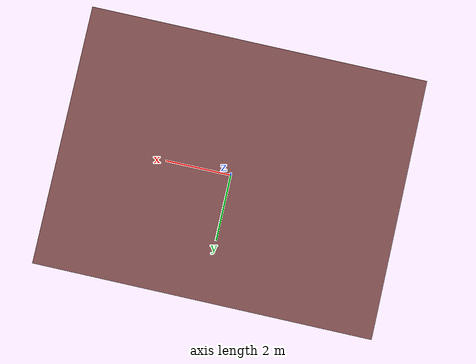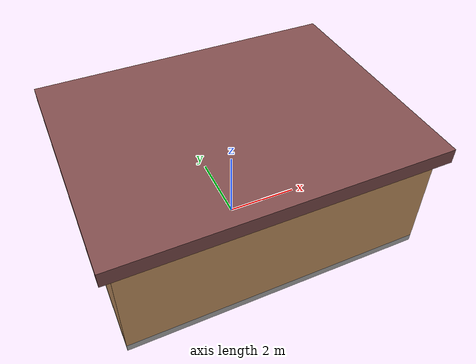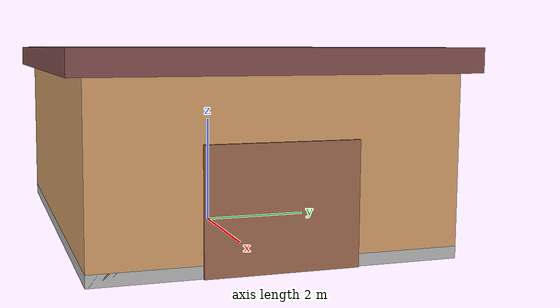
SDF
<?xml version="1.0" ?>
<sdf version="1.8">
  <model name="storage_building">
    <static>true</static>

    <!-- Building foundation -->
    <link name="foundation">
      <pose>0 0 0.1 0 0 0</pose>
      <collision name="foundation_collision">
        <geometry>
          <box>
            <size>8 6 0.2</size>
          </box>
        </geometry>
      </collision>
      <visual name="foundation_visual">
        <geometry>
          <box>
            <size>8 6 0.2</size>
          </box>
        </geometry>
        <material>
          <ambient>0.5 0.5 0.5 1</ambient>
          <diffuse>0.7 0.7 0.7 1</diffuse>
          <specular>0.1 0.1 0.1 1</specular>
        </material>
      </visual>
    </link>

    <!-- Main walls -->
    <link name="walls">
      <pose>0 0 1.5 0 0 0</pose>
      <collision name="walls_collision">
        <geometry>
          <box>
            <size>8 6 3</size>
          </box>
        </geometry>
      </collision>
      <visual name="walls_visual">
        <geometry>
          <box>
            <size>8 6 3</size>
          </box>
        </geometry>
        <material>
          <ambient>0.6 0.4 0.3 1</ambient>
          <diffuse>0.8 0.6 0.4 1</diffuse>
          <specular>0.1 0.1 0.1 1</specular>
        </material>
      </visual>
    </link>

    <!-- Roof -->
    <link name="roof">
      <pose>0 0 3.2 0 0 0</pose>
      <collision name="roof_collision">
        <geometry>
          <box>
            <size>8.5 6.5 0.4</size>
          </box>
        </geometry>
      </collision>
      <visual name="roof_visual">
        <geometry>
          <box>
            <size>8.5 6.5 0.4</size>
          </box>
        </geometry>
        <material>
          <ambient>0.3 0.2 0.2 1</ambient>
          <diffuse>0.5 0.3 0.3 1</diffuse>
          <specular>0.2 0.2 0.2 1</specular>
        </material>
      </visual>
    </link>

    <!-- Door frame -->
    <link name="door_frame">
      <pose>4 0 1.0 0 0 0</pose>
      <collision name="door_frame_collision">
        <geometry>
          <box>
            <size>0.1 2.5 2.0</size>
          </box>
        </geometry>
      </collision>
      <visual name="door_frame_visual">
        <geometry>
          <box>
            <size>0.1 2.5 2.0</size>
          </box>
        </geometry>
        <material>
          <ambient>0.4 0.3 0.2 1</ambient>
          <diffuse>0.6 0.4 0.3 1</diffuse>
          <specular>0.1 0.1 0.1 1</specular>
        </material>
      </visual>
    </link>

    <!-- Fixed joints -->
    <joint name="foundation_to_walls" type="fixed">
      <parent>foundation</parent>
      <child>walls</child>
    </joint>

    <joint name="walls_to_roof" type="fixed">
      <parent>walls</parent>
      <child>roof</child>
    </joint>

    <joint name="walls_to_door_frame" type="fixed">
      <parent>walls</parent>
      <child>door_frame</child>
    </joint>
  </model>
</sdf>
